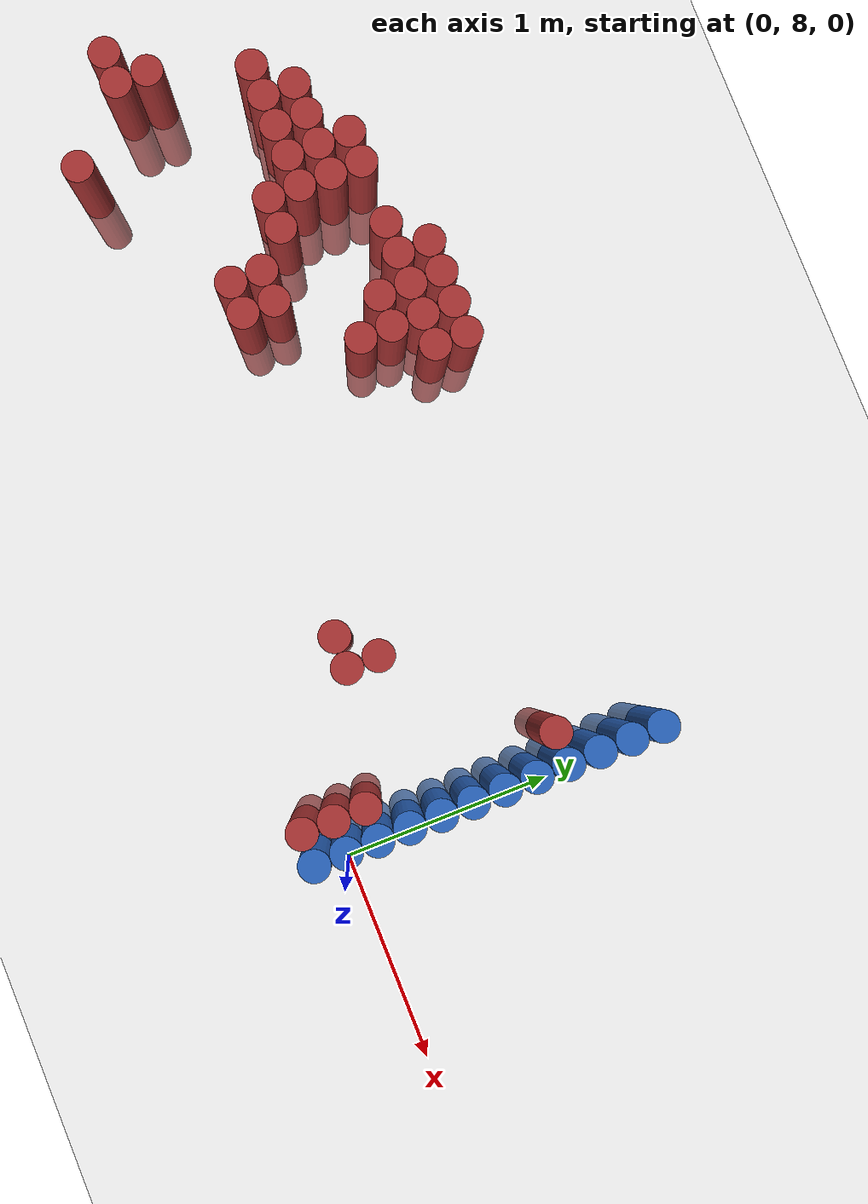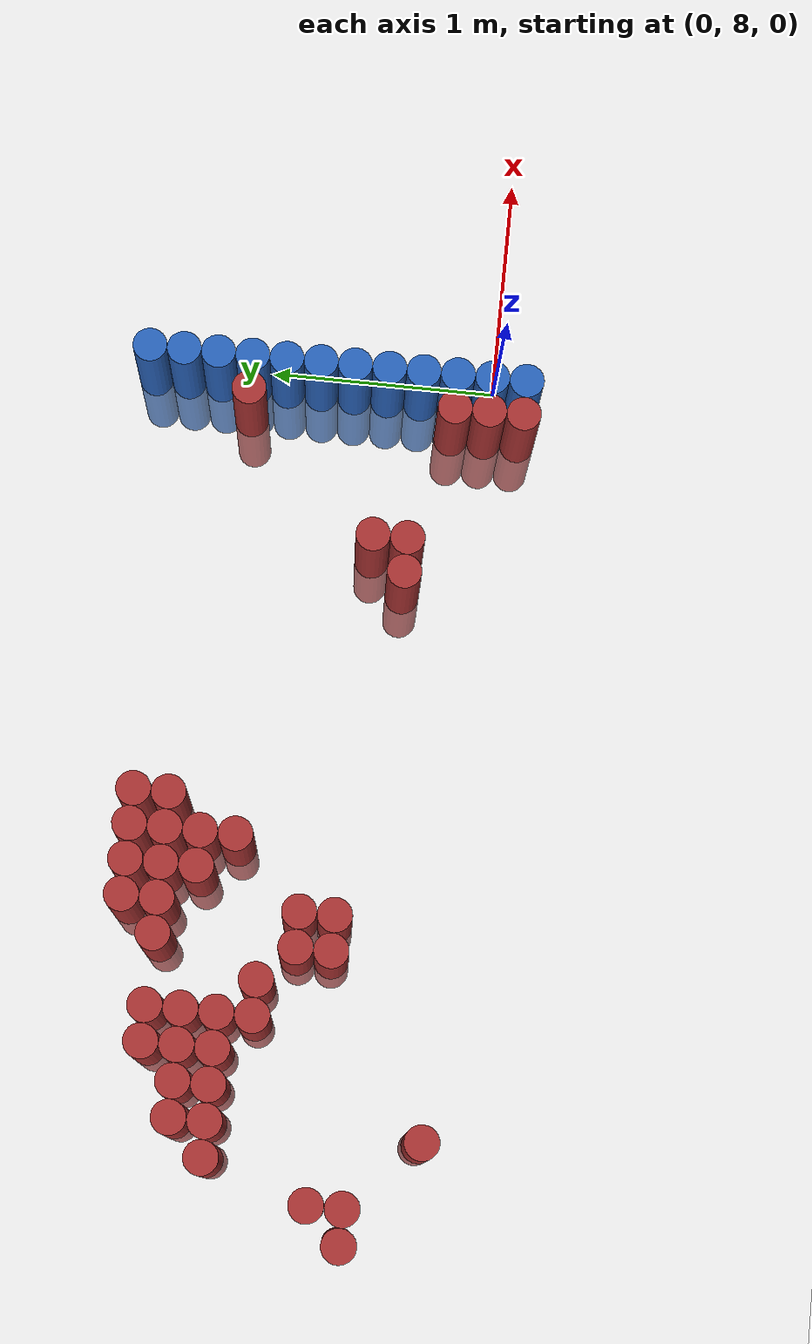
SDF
<sdf version="1.6">
 <world name="default">
  <model name="ground_plane">
   <static>1</static>
   <link name="link">
    <collision name="collision">
     <geometry><plane><normal>0 0 1</normal><size>100 100</size></plane></geometry>
     <surface><friction><ode><mu>100</mu><mu2>50</mu2></ode></friction></surface>
    </collision>
    <visual name="visual">
     <cast_shadows>0</cast_shadows>
     <geometry><plane><normal>0 0 1</normal><size>100 100</size></plane></geometry>
     <material>
      <script><uri>file://media/materials/scripts/gazebo.material</uri><name>Gazebo/Grey</name></script>
     </material>
    </visual>
   </link>
  </model>
  <model name="unit_cylinder_151">
   <static>1</static>
   <pose>-3.825000 8.325000 0.000000 0.000000 0.000000 0.000000</pose>
   <link name="link">
    <inertial>
     <mass>1</mass>
     <inertia><ixx>0.145833</ixx><ixy>0</ixy><ixz>0</ixz><iyy>0.145833</iyy><iyz>0</iyz><izz>0.125</izz></inertia>
    </inertial>
    <collision name="collision">
     <geometry><cylinder><radius>0.075000</radius><length>1</length></cylinder></geometry>
    </collision>
    <visual name="visual">
     <geometry><cylinder><radius>0.075000</radius><length>1</length></cylinder></geometry>
     <material>
      <ambient>0.648000 0.192000 0.192000 1</ambient>
      <diffuse>0.648000 0.192000 0.192000 1</diffuse>
     </material>
     <material>
      <script><name>Gazebo/Grey</name><uri>file://media/materials/scripts/gazebo.material</uri></script>
     </material>
    </visual>
   </link>
  </model>
  <model name="unit_cylinder_153">
   <static>1</static>
   <pose>-3.675000 8.325000 0.000000 0.000000 0.000000 0.000000</pose>
   <link name="link">
    <inertial>
     <mass>1</mass>
     <inertia><ixx>0.145833</ixx><ixy>0</ixy><ixz>0</ixz><iyy>0.145833</iyy><iyz>0</iyz><izz>0.125</izz></inertia>
    </inertial>
    <collision name="collision">
     <geometry><cylinder><radius>0.075000</radius><length>1</length></cylinder></geometry>
    </collision>
    <visual name="visual">
     <geometry><cylinder><radius>0.075000</radius><length>1</length></cylinder></geometry>
     <material>
      <ambient>0.648000 0.192000 0.192000 1</ambient>
      <diffuse>0.648000 0.192000 0.192000 1</diffuse>
     </material>
     <material>
      <script><name>Gazebo/Grey</name><uri>file://media/materials/scripts/gazebo.material</uri></script>
     </material>
    </visual>
   </link>
  </model>
  <model name="unit_cylinder_154">
   <static>1</static>
   <pose>-3.675000 8.475000 0.000000 0.000000 0.000000 0.000000</pose>
   <link name="link">
    <inertial>
     <mass>1</mass>
     <inertia><ixx>0.145833</ixx><ixy>0</ixy><ixz>0</ixz><iyy>0.145833</iyy><iyz>0</iyz><izz>0.125</izz></inertia>
    </inertial>
    <collision name="collision">
     <geometry><cylinder><radius>0.075000</radius><length>1</length></cylinder></geometry>
    </collision>
    <visual name="visual">
     <geometry><cylinder><radius>0.075000</radius><length>1</length></cylinder></geometry>
     <material>
      <ambient>0.648000 0.192000 0.192000 1</ambient>
      <diffuse>0.648000 0.192000 0.192000 1</diffuse>
     </material>
     <material>
      <script><name>Gazebo/Grey</name><uri>file://media/materials/scripts/gazebo.material</uri></script>
     </material>
    </visual>
   </link>
  </model>
  <model name="unit_cylinder_157">
   <static>1</static>
   <pose>-3.525000 8.925000 0.000000 0.000000 0.000000 0.000000</pose>
   <link name="link">
    <inertial>
     <mass>1</mass>
     <inertia><ixx>0.145833</ixx><ixy>0</ixy><ixz>0</ixz><iyy>0.145833</iyy><iyz>0</iyz><izz>0.125</izz></inertia>
    </inertial>
    <collision name="collision">
     <geometry><cylinder><radius>0.075000</radius><length>1</length></cylinder></geometry>
    </collision>
    <visual name="visual">
     <geometry><cylinder><radius>0.075000</radius><length>1</length></cylinder></geometry>
     <material>
      <ambient>0.648000 0.192000 0.192000 1</ambient>
      <diffuse>0.648000 0.192000 0.192000 1</diffuse>
     </material>
     <material>
      <script><name>Gazebo/Grey</name><uri>file://media/materials/scripts/gazebo.material</uri></script>
     </material>
    </visual>
   </link>
  </model>
  <model name="unit_cylinder_160">
   <static>1</static>
   <pose>-3.375000 8.025000 0.000000 0.000000 0.000000 0.000000</pose>
   <link name="link">
    <inertial>
     <mass>1</mass>
     <inertia><ixx>0.145833</ixx><ixy>0</ixy><ixz>0</ixz><iyy>0.145833</iyy><iyz>0</iyz><izz>0.125</izz></inertia>
    </inertial>
    <collision name="collision">
     <geometry><cylinder><radius>0.075000</radius><length>1</length></cylinder></geometry>
    </collision>
    <visual name="visual">
     <geometry><cylinder><radius>0.075000</radius><length>1</length></cylinder></geometry>
     <material>
      <ambient>0.648000 0.192000 0.192000 1</ambient>
      <diffuse>0.648000 0.192000 0.192000 1</diffuse>
     </material>
     <material>
      <script><name>Gazebo/Grey</name><uri>file://media/materials/scripts/gazebo.material</uri></script>
     </material>
    </visual>
   </link>
  </model>
  <model name="unit_cylinder_161">
   <static>1</static>
   <pose>-3.375000 8.925000 0.000000 0.000000 0.000000 0.000000</pose>
   <link name="link">
    <inertial>
     <mass>1</mass>
     <inertia><ixx>0.145833</ixx><ixy>0</ixy><ixz>0</ixz><iyy>0.145833</iyy><iyz>0</iyz><izz>0.125</izz></inertia>
    </inertial>
    <collision name="collision">
     <geometry><cylinder><radius>0.075000</radius><length>1</length></cylinder></geometry>
    </collision>
    <visual name="visual">
     <geometry><cylinder><radius>0.075000</radius><length>1</length></cylinder></geometry>
     <material>
      <ambient>0.648000 0.192000 0.192000 1</ambient>
      <diffuse>0.648000 0.192000 0.192000 1</diffuse>
     </material>
     <material>
      <script><name>Gazebo/Grey</name><uri>file://media/materials/scripts/gazebo.material</uri></script>
     </material>
    </visual>
   </link>
  </model>
  <model name="unit_cylinder_162">
   <static>1</static>
   <pose>-3.375000 9.075000 0.000000 0.000000 0.000000 0.000000</pose>
   <link name="link">
    <inertial>
     <mass>1</mass>
     <inertia><ixx>0.145833</ixx><ixy>0</ixy><ixz>0</ixz><iyy>0.145833</iyy><iyz>0</iyz><izz>0.125</izz></inertia>
    </inertial>
    <collision name="collision">
     <geometry><cylinder><radius>0.075000</radius><length>1</length></cylinder></geometry>
    </collision>
    <visual name="visual">
     <geometry><cylinder><radius>0.075000</radius><length>1</length></cylinder></geometry>
     <material>
      <ambient>0.648000 0.192000 0.192000 1</ambient>
      <diffuse>0.648000 0.192000 0.192000 1</diffuse>
     </material>
     <material>
      <script><name>Gazebo/Grey</name><uri>file://media/materials/scripts/gazebo.material</uri></script>
     </material>
    </visual>
   </link>
  </model>
  <model name="unit_cylinder_165">
   <static>1</static>
   <pose>-3.225000 8.925000 0.000000 0.000000 0.000000 0.000000</pose>
   <link name="link">
    <inertial>
     <mass>1</mass>
     <inertia><ixx>0.145833</ixx><ixy>0</ixy><ixz>0</ixz><iyy>0.145833</iyy><iyz>0</iyz><izz>0.125</izz></inertia>
    </inertial>
    <collision name="collision">
     <geometry><cylinder><radius>0.075000</radius><length>1</length></cylinder></geometry>
    </collision>
    <visual name="visual">
     <geometry><cylinder><radius>0.075000</radius><length>1</length></cylinder></geometry>
     <material>
      <ambient>0.648000 0.192000 0.192000 1</ambient>
      <diffuse>0.648000 0.192000 0.192000 1</diffuse>
     </material>
     <material>
      <script><name>Gazebo/Grey</name><uri>file://media/materials/scripts/gazebo.material</uri></script>
     </material>
    </visual>
   </link>
  </model>
  <model name="unit_cylinder_166">
   <static>1</static>
   <pose>-3.225000 9.075000 0.000000 0.000000 0.000000 0.000000</pose>
   <link name="link">
    <inertial>
     <mass>1</mass>
     <inertia><ixx>0.145833</ixx><ixy>0</ixy><ixz>0</ixz><iyy>0.145833</iyy><iyz>0</iyz><izz>0.125</izz></inertia>
    </inertial>
    <collision name="collision">
     <geometry><cylinder><radius>0.075000</radius><length>1</length></cylinder></geometry>
    </collision>
    <visual name="visual">
     <geometry><cylinder><radius>0.075000</radius><length>1</length></cylinder></geometry>
     <material>
      <ambient>0.648000 0.192000 0.192000 1</ambient>
      <diffuse>0.648000 0.192000 0.192000 1</diffuse>
     </material>
     <material>
      <script><name>Gazebo/Grey</name><uri>file://media/materials/scripts/gazebo.material</uri></script>
     </material>
    </visual>
   </link>
  </model>
  <model name="unit_cylinder_168">
   <static>1</static>
   <pose>-3.075000 8.925000 0.000000 0.000000 0.000000 0.000000</pose>
   <link name="link">
    <inertial>
     <mass>1</mass>
     <inertia><ixx>0.145833</ixx><ixy>0</ixy><ixz>0</ixz><iyy>0.145833</iyy><iyz>0</iyz><izz>0.125</izz></inertia>
    </inertial>
    <collision name="collision">
     <geometry><cylinder><radius>0.075000</radius><length>1</length></cylinder></geometry>
    </collision>
    <visual name="visual">
     <geometry><cylinder><radius>0.075000</radius><length>1</length></cylinder></geometry>
     <material>
      <ambient>0.648000 0.192000 0.192000 1</ambient>
      <diffuse>0.648000 0.192000 0.192000 1</diffuse>
     </material>
     <material>
      <script><name>Gazebo/Grey</name><uri>file://media/materials/scripts/gazebo.material</uri></script>
     </material>
    </visual>
   </link>
  </model>
  <model name="unit_cylinder_169">
   <static>1</static>
   <pose>-3.075000 9.075000 0.000000 0.000000 0.000000 0.000000</pose>
   <link name="link">
    <inertial>
     <mass>1</mass>
     <inertia><ixx>0.145833</ixx><ixy>0</ixy><ixz>0</ixz><iyy>0.145833</iyy><iyz>0</iyz><izz>0.125</izz></inertia>
    </inertial>
    <collision name="collision">
     <geometry><cylinder><radius>0.075000</radius><length>1</length></cylinder></geometry>
    </collision>
    <visual name="visual">
     <geometry><cylinder><radius>0.075000</radius><length>1</length></cylinder></geometry>
     <material>
      <ambient>0.648000 0.192000 0.192000 1</ambient>
      <diffuse>0.648000 0.192000 0.192000 1</diffuse>
     </material>
     <material>
      <script><name>Gazebo/Grey</name><uri>file://media/materials/scripts/gazebo.material</uri></script>
     </material>
    </visual>
   </link>
  </model>
  <model name="unit_cylinder_170">
   <static>1</static>
   <pose>-3.075000 9.225000 0.000000 0.000000 0.000000 0.000000</pose>
   <link name="link">
    <inertial>
     <mass>1</mass>
     <inertia><ixx>0.145833</ixx><ixy>0</ixy><ixz>0</ixz><iyy>0.145833</iyy><iyz>0</iyz><izz>0.125</izz></inertia>
    </inertial>
    <collision name="collision">
     <geometry><cylinder><radius>0.075000</radius><length>1</length></cylinder></geometry>
    </collision>
    <visual name="visual">
     <geometry><cylinder><radius>0.075000</radius><length>1</length></cylinder></geometry>
     <material>
      <ambient>0.648000 0.192000 0.192000 1</ambient>
      <diffuse>0.648000 0.192000 0.192000 1</diffuse>
     </material>
     <material>
      <script><name>Gazebo/Grey</name><uri>file://media/materials/scripts/gazebo.material</uri></script>
     </material>
    </visual>
   </link>
  </model>
  <model name="unit_cylinder_171">
   <static>1</static>
   <pose>-2.925000 8.775000 0.000000 0.000000 0.000000 0.000000</pose>
   <link name="link">
    <inertial>
     <mass>1</mass>
     <inertia><ixx>0.145833</ixx><ixy>0</ixy><ixz>0</ixz><iyy>0.145833</iyy><iyz>0</iyz><izz>0.125</izz></inertia>
    </inertial>
    <collision name="collision">
     <geometry><cylinder><radius>0.075000</radius><length>1</length></cylinder></geometry>
    </collision>
    <visual name="visual">
     <geometry><cylinder><radius>0.075000</radius><length>1</length></cylinder></geometry>
     <material>
      <ambient>0.648000 0.192000 0.192000 1</ambient>
      <diffuse>0.648000 0.192000 0.192000 1</diffuse>
     </material>
     <material>
      <script><name>Gazebo/Grey</name><uri>file://media/materials/scripts/gazebo.material</uri></script>
     </material>
    </visual>
   </link>
  </model>
  <model name="unit_cylinder_172">
   <static>1</static>
   <pose>-2.925000 8.925000 0.000000 0.000000 0.000000 0.000000</pose>
   <link name="link">
    <inertial>
     <mass>1</mass>
     <inertia><ixx>0.145833</ixx><ixy>0</ixy><ixz>0</ixz><iyy>0.145833</iyy><iyz>0</iyz><izz>0.125</izz></inertia>
    </inertial>
    <collision name="collision">
     <geometry><cylinder><radius>0.075000</radius><length>1</length></cylinder></geometry>
    </collision>
    <visual name="visual">
     <geometry><cylinder><radius>0.075000</radius><length>1</length></cylinder></geometry>
     <material>
      <ambient>0.648000 0.192000 0.192000 1</ambient>
      <diffuse>0.648000 0.192000 0.192000 1</diffuse>
     </material>
     <material>
      <script><name>Gazebo/Grey</name><uri>file://media/materials/scripts/gazebo.material</uri></script>
     </material>
    </visual>
   </link>
  </model>
  <model name="unit_cylinder_173">
   <static>1</static>
   <pose>-2.925000 9.075000 0.000000 0.000000 0.000000 0.000000</pose>
   <link name="link">
    <inertial>
     <mass>1</mass>
     <inertia><ixx>0.145833</ixx><ixy>0</ixy><ixz>0</ixz><iyy>0.145833</iyy><iyz>0</iyz><izz>0.125</izz></inertia>
    </inertial>
    <collision name="collision">
     <geometry><cylinder><radius>0.075000</radius><length>1</length></cylinder></geometry>
    </collision>
    <visual name="visual">
     <geometry><cylinder><radius>0.075000</radius><length>1</length></cylinder></geometry>
     <material>
      <ambient>0.648000 0.192000 0.192000 1</ambient>
      <diffuse>0.648000 0.192000 0.192000 1</diffuse>
     </material>
     <material>
      <script><name>Gazebo/Grey</name><uri>file://media/materials/scripts/gazebo.material</uri></script>
     </material>
    </visual>
   </link>
  </model>
  <model name="unit_cylinder_174">
   <static>1</static>
   <pose>-2.925000 9.225000 0.000000 0.000000 0.000000 0.000000</pose>
   <link name="link">
    <inertial>
     <mass>1</mass>
     <inertia><ixx>0.145833</ixx><ixy>0</ixy><ixz>0</ixz><iyy>0.145833</iyy><iyz>0</iyz><izz>0.125</izz></inertia>
    </inertial>
    <collision name="collision">
     <geometry><cylinder><radius>0.075000</radius><length>1</length></cylinder></geometry>
    </collision>
    <visual name="visual">
     <geometry><cylinder><radius>0.075000</radius><length>1</length></cylinder></geometry>
     <material>
      <ambient>0.648000 0.192000 0.192000 1</ambient>
      <diffuse>0.648000 0.192000 0.192000 1</diffuse>
     </material>
     <material>
      <script><name>Gazebo/Grey</name><uri>file://media/materials/scripts/gazebo.material</uri></script>
     </material>
    </visual>
   </link>
  </model>
  <model name="unit_cylinder_175">
   <static>1</static>
   <pose>-2.775000 8.775000 0.000000 0.000000 0.000000 0.000000</pose>
   <link name="link">
    <inertial>
     <mass>1</mass>
     <inertia><ixx>0.145833</ixx><ixy>0</ixy><ixz>0</ixz><iyy>0.145833</iyy><iyz>0</iyz><izz>0.125</izz></inertia>
    </inertial>
    <collision name="collision">
     <geometry><cylinder><radius>0.075000</radius><length>1</length></cylinder></geometry>
    </collision>
    <visual name="visual">
     <geometry><cylinder><radius>0.075000</radius><length>1</length></cylinder></geometry>
     <material>
      <ambient>0.648000 0.192000 0.192000 1</ambient>
      <diffuse>0.648000 0.192000 0.192000 1</diffuse>
     </material>
     <material>
      <script><name>Gazebo/Grey</name><uri>file://media/materials/scripts/gazebo.material</uri></script>
     </material>
    </visual>
   </link>
  </model>
  <model name="unit_cylinder_176">
   <static>1</static>
   <pose>-2.625000 8.475000 0.000000 0.000000 0.000000 0.000000</pose>
   <link name="link">
    <inertial>
     <mass>1</mass>
     <inertia><ixx>0.145833</ixx><ixy>0</ixy><ixz>0</ixz><iyy>0.145833</iyy><iyz>0</iyz><izz>0.125</izz></inertia>
    </inertial>
    <collision name="collision">
     <geometry><cylinder><radius>0.075000</radius><length>1</length></cylinder></geometry>
    </collision>
    <visual name="visual">
     <geometry><cylinder><radius>0.075000</radius><length>1</length></cylinder></geometry>
     <material>
      <ambient>0.648000 0.192000 0.192000 1</ambient>
      <diffuse>0.648000 0.192000 0.192000 1</diffuse>
     </material>
     <material>
      <script><name>Gazebo/Grey</name><uri>file://media/materials/scripts/gazebo.material</uri></script>
     </material>
    </visual>
   </link>
  </model>
  <model name="unit_cylinder_177">
   <static>1</static>
   <pose>-2.625000 8.625000 0.000000 0.000000 0.000000 0.000000</pose>
   <link name="link">
    <inertial>
     <mass>1</mass>
     <inertia><ixx>0.145833</ixx><ixy>0</ixy><ixz>0</ixz><iyy>0.145833</iyy><iyz>0</iyz><izz>0.125</izz></inertia>
    </inertial>
    <collision name="collision">
     <geometry><cylinder><radius>0.075000</radius><length>1</length></cylinder></geometry>
    </collision>
    <visual name="visual">
     <geometry><cylinder><radius>0.075000</radius><length>1</length></cylinder></geometry>
     <material>
      <ambient>0.648000 0.192000 0.192000 1</ambient>
      <diffuse>0.648000 0.192000 0.192000 1</diffuse>
     </material>
     <material>
      <script><name>Gazebo/Grey</name><uri>file://media/materials/scripts/gazebo.material</uri></script>
     </material>
    </visual>
   </link>
  </model>
  <model name="unit_cylinder_178">
   <static>1</static>
   <pose>-2.625000 9.225000 0.000000 0.000000 0.000000 0.000000</pose>
   <link name="link">
    <inertial>
     <mass>1</mass>
     <inertia><ixx>0.145833</ixx><ixy>0</ixy><ixz>0</ixz><iyy>0.145833</iyy><iyz>0</iyz><izz>0.125</izz></inertia>
    </inertial>
    <collision name="collision">
     <geometry><cylinder><radius>0.075000</radius><length>1</length></cylinder></geometry>
    </collision>
    <visual name="visual">
     <geometry><cylinder><radius>0.075000</radius><length>1</length></cylinder></geometry>
     <material>
      <ambient>0.648000 0.192000 0.192000 1</ambient>
      <diffuse>0.648000 0.192000 0.192000 1</diffuse>
     </material>
     <material>
      <script><name>Gazebo/Grey</name><uri>file://media/materials/scripts/gazebo.material</uri></script>
     </material>
    </visual>
   </link>
  </model>
  <model name="unit_cylinder_179">
   <static>1</static>
   <pose>-2.475000 8.475000 0.000000 0.000000 0.000000 0.000000</pose>
   <link name="link">
    <inertial>
     <mass>1</mass>
     <inertia><ixx>0.145833</ixx><ixy>0</ixy><ixz>0</ixz><iyy>0.145833</iyy><iyz>0</iyz><izz>0.125</izz></inertia>
    </inertial>
    <collision name="collision">
     <geometry><cylinder><radius>0.075000</radius><length>1</length></cylinder></geometry>
    </collision>
    <visual name="visual">
     <geometry><cylinder><radius>0.075000</radius><length>1</length></cylinder></geometry>
     <material>
      <ambient>0.648000 0.192000 0.192000 1</ambient>
      <diffuse>0.648000 0.192000 0.192000 1</diffuse>
     </material>
     <material>
      <script><name>Gazebo/Grey</name><uri>file://media/materials/scripts/gazebo.material</uri></script>
     </material>
    </visual>
   </link>
  </model>
  <model name="unit_cylinder_180">
   <static>1</static>
   <pose>-2.475000 8.625000 0.000000 0.000000 0.000000 0.000000</pose>
   <link name="link">
    <inertial>
     <mass>1</mass>
     <inertia><ixx>0.145833</ixx><ixy>0</ixy><ixz>0</ixz><iyy>0.145833</iyy><iyz>0</iyz><izz>0.125</izz></inertia>
    </inertial>
    <collision name="collision">
     <geometry><cylinder><radius>0.075000</radius><length>1</length></cylinder></geometry>
    </collision>
    <visual name="visual">
     <geometry><cylinder><radius>0.075000</radius><length>1</length></cylinder></geometry>
     <material>
      <ambient>0.648000 0.192000 0.192000 1</ambient>
      <diffuse>0.648000 0.192000 0.192000 1</diffuse>
     </material>
     <material>
      <script><name>Gazebo/Grey</name><uri>file://media/materials/scripts/gazebo.material</uri></script>
     </material>
    </visual>
   </link>
  </model>
  <model name="unit_cylinder_181">
   <static>1</static>
   <pose>-2.475000 9.225000 0.000000 0.000000 0.000000 0.000000</pose>
   <link name="link">
    <inertial>
     <mass>1</mass>
     <inertia><ixx>0.145833</ixx><ixy>0</ixy><ixz>0</ixz><iyy>0.145833</iyy><iyz>0</iyz><izz>0.125</izz></inertia>
    </inertial>
    <collision name="collision">
     <geometry><cylinder><radius>0.075000</radius><length>1</length></cylinder></geometry>
    </collision>
    <visual name="visual">
     <geometry><cylinder><radius>0.075000</radius><length>1</length></cylinder></geometry>
     <material>
      <ambient>0.648000 0.192000 0.192000 1</ambient>
      <diffuse>0.648000 0.192000 0.192000 1</diffuse>
     </material>
     <material>
      <script><name>Gazebo/Grey</name><uri>file://media/materials/scripts/gazebo.material</uri></script>
     </material>
    </visual>
   </link>
  </model>
  <model name="unit_cylinder_182">
   <static>1</static>
   <pose>-2.475000 9.375000 0.000000 0.000000 0.000000 0.000000</pose>
   <link name="link">
    <inertial>
     <mass>1</mass>
     <inertia><ixx>0.145833</ixx><ixy>0</ixy><ixz>0</ixz><iyy>0.145833</iyy><iyz>0</iyz><izz>0.125</izz></inertia>
    </inertial>
    <collision name="collision">
     <geometry><cylinder><radius>0.075000</radius><length>1</length></cylinder></geometry>
    </collision>
    <visual name="visual">
     <geometry><cylinder><radius>0.075000</radius><length>1</length></cylinder></geometry>
     <material>
      <ambient>0.648000 0.192000 0.192000 1</ambient>
      <diffuse>0.648000 0.192000 0.192000 1</diffuse>
     </material>
     <material>
      <script><name>Gazebo/Grey</name><uri>file://media/materials/scripts/gazebo.material</uri></script>
     </material>
    </visual>
   </link>
  </model>
  <model name="unit_cylinder_183">
   <static>1</static>
   <pose>-2.325000 9.075000 0.000000 0.000000 0.000000 0.000000</pose>
   <link name="link">
    <inertial>
     <mass>1</mass>
     <inertia><ixx>0.145833</ixx><ixy>0</ixy><ixz>0</ixz><iyy>0.145833</iyy><iyz>0</iyz><izz>0.125</izz></inertia>
    </inertial>
    <collision name="collision">
     <geometry><cylinder><radius>0.075000</radius><length>1</length></cylinder></geometry>
    </collision>
    <visual name="visual">
     <geometry><cylinder><radius>0.075000</radius><length>1</length></cylinder></geometry>
     <material>
      <ambient>0.648000 0.192000 0.192000 1</ambient>
      <diffuse>0.648000 0.192000 0.192000 1</diffuse>
     </material>
     <material>
      <script><name>Gazebo/Grey</name><uri>file://media/materials/scripts/gazebo.material</uri></script>
     </material>
    </visual>
   </link>
  </model>
  <model name="unit_cylinder_184">
   <static>1</static>
   <pose>-2.325000 9.225000 0.000000 0.000000 0.000000 0.000000</pose>
   <link name="link">
    <inertial>
     <mass>1</mass>
     <inertia><ixx>0.145833</ixx><ixy>0</ixy><ixz>0</ixz><iyy>0.145833</iyy><iyz>0</iyz><izz>0.125</izz></inertia>
    </inertial>
    <collision name="collision">
     <geometry><cylinder><radius>0.075000</radius><length>1</length></cylinder></geometry>
    </collision>
    <visual name="visual">
     <geometry><cylinder><radius>0.075000</radius><length>1</length></cylinder></geometry>
     <material>
      <ambient>0.648000 0.192000 0.192000 1</ambient>
      <diffuse>0.648000 0.192000 0.192000 1</diffuse>
     </material>
     <material>
      <script><name>Gazebo/Grey</name><uri>file://media/materials/scripts/gazebo.material</uri></script>
     </material>
    </visual>
   </link>
  </model>
  <model name="unit_cylinder_185">
   <static>1</static>
   <pose>-2.325000 9.375000 0.000000 0.000000 0.000000 0.000000</pose>
   <link name="link">
    <inertial>
     <mass>1</mass>
     <inertia><ixx>0.145833</ixx><ixy>0</ixy><ixz>0</ixz><iyy>0.145833</iyy><iyz>0</iyz><izz>0.125</izz></inertia>
    </inertial>
    <collision name="collision">
     <geometry><cylinder><radius>0.075000</radius><length>1</length></cylinder></geometry>
    </collision>
    <visual name="visual">
     <geometry><cylinder><radius>0.075000</radius><length>1</length></cylinder></geometry>
     <material>
      <ambient>0.648000 0.192000 0.192000 1</ambient>
      <diffuse>0.648000 0.192000 0.192000 1</diffuse>
     </material>
     <material>
      <script><name>Gazebo/Grey</name><uri>file://media/materials/scripts/gazebo.material</uri></script>
     </material>
    </visual>
   </link>
  </model>
  <model name="unit_cylinder_187">
   <static>1</static>
   <pose>-2.175000 8.925000 0.000000 0.000000 0.000000 0.000000</pose>
   <link name="link">
    <inertial>
     <mass>1</mass>
     <inertia><ixx>0.145833</ixx><ixy>0</ixy><ixz>0</ixz><iyy>0.145833</iyy><iyz>0</iyz><izz>0.125</izz></inertia>
    </inertial>
    <collision name="collision">
     <geometry><cylinder><radius>0.075000</radius><length>1</length></cylinder></geometry>
    </collision>
    <visual name="visual">
     <geometry><cylinder><radius>0.075000</radius><length>1</length></cylinder></geometry>
     <material>
      <ambient>0.648000 0.192000 0.192000 1</ambient>
      <diffuse>0.648000 0.192000 0.192000 1</diffuse>
     </material>
     <material>
      <script><name>Gazebo/Grey</name><uri>file://media/materials/scripts/gazebo.material</uri></script>
     </material>
    </visual>
   </link>
  </model>
  <model name="unit_cylinder_188">
   <static>1</static>
   <pose>-2.175000 9.075000 0.000000 0.000000 0.000000 0.000000</pose>
   <link name="link">
    <inertial>
     <mass>1</mass>
     <inertia><ixx>0.145833</ixx><ixy>0</ixy><ixz>0</ixz><iyy>0.145833</iyy><iyz>0</iyz><izz>0.125</izz></inertia>
    </inertial>
    <collision name="collision">
     <geometry><cylinder><radius>0.075000</radius><length>1</length></cylinder></geometry>
    </collision>
    <visual name="visual">
     <geometry><cylinder><radius>0.075000</radius><length>1</length></cylinder></geometry>
     <material>
      <ambient>0.648000 0.192000 0.192000 1</ambient>
      <diffuse>0.648000 0.192000 0.192000 1</diffuse>
     </material>
     <material>
      <script><name>Gazebo/Grey</name><uri>file://media/materials/scripts/gazebo.material</uri></script>
     </material>
    </visual>
   </link>
  </model>
  <model name="unit_cylinder_189">
   <static>1</static>
   <pose>-2.175000 9.225000 0.000000 0.000000 0.000000 0.000000</pose>
   <link name="link">
    <inertial>
     <mass>1</mass>
     <inertia><ixx>0.145833</ixx><ixy>0</ixy><ixz>0</ixz><iyy>0.145833</iyy><iyz>0</iyz><izz>0.125</izz></inertia>
    </inertial>
    <collision name="collision">
     <geometry><cylinder><radius>0.075000</radius><length>1</length></cylinder></geometry>
    </collision>
    <visual name="visual">
     <geometry><cylinder><radius>0.075000</radius><length>1</length></cylinder></geometry>
     <material>
      <ambient>0.648000 0.192000 0.192000 1</ambient>
      <diffuse>0.648000 0.192000 0.192000 1</diffuse>
     </material>
     <material>
      <script><name>Gazebo/Grey</name><uri>file://media/materials/scripts/gazebo.material</uri></script>
     </material>
    </visual>
   </link>
  </model>
  <model name="unit_cylinder_190">
   <static>1</static>
   <pose>-2.175000 9.375000 0.000000 0.000000 0.000000 0.000000</pose>
   <link name="link">
    <inertial>
     <mass>1</mass>
     <inertia><ixx>0.145833</ixx><ixy>0</ixy><ixz>0</ixz><iyy>0.145833</iyy><iyz>0</iyz><izz>0.125</izz></inertia>
    </inertial>
    <collision name="collision">
     <geometry><cylinder><radius>0.075000</radius><length>1</length></cylinder></geometry>
    </collision>
    <visual name="visual">
     <geometry><cylinder><radius>0.075000</radius><length>1</length></cylinder></geometry>
     <material>
      <ambient>0.648000 0.192000 0.192000 1</ambient>
      <diffuse>0.648000 0.192000 0.192000 1</diffuse>
     </material>
     <material>
      <script><name>Gazebo/Grey</name><uri>file://media/materials/scripts/gazebo.material</uri></script>
     </material>
    </visual>
   </link>
  </model>
  <model name="unit_cylinder_194">
   <static>1</static>
   <pose>-2.025000 9.225000 0.000000 0.000000 0.000000 0.000000</pose>
   <link name="link">
    <inertial>
     <mass>1</mass>
     <inertia><ixx>0.145833</ixx><ixy>0</ixy><ixz>0</ixz><iyy>0.145833</iyy><iyz>0</iyz><izz>0.125</izz></inertia>
    </inertial>
    <collision name="collision">
     <geometry><cylinder><radius>0.075000</radius><length>1</length></cylinder></geometry>
    </collision>
    <visual name="visual">
     <geometry><cylinder><radius>0.075000</radius><length>1</length></cylinder></geometry>
     <material>
      <ambient>0.648000 0.192000 0.192000 1</ambient>
      <diffuse>0.648000 0.192000 0.192000 1</diffuse>
     </material>
     <material>
      <script><name>Gazebo/Grey</name><uri>file://media/materials/scripts/gazebo.material</uri></script>
     </material>
    </visual>
   </link>
  </model>
  <model name="unit_cylinder_195">
   <static>1</static>
   <pose>-2.025000 9.375000 0.000000 0.000000 0.000000 0.000000</pose>
   <link name="link">
    <inertial>
     <mass>1</mass>
     <inertia><ixx>0.145833</ixx><ixy>0</ixy><ixz>0</ixz><iyy>0.145833</iyy><iyz>0</iyz><izz>0.125</izz></inertia>
    </inertial>
    <collision name="collision">
     <geometry><cylinder><radius>0.075000</radius><length>1</length></cylinder></geometry>
    </collision>
    <visual name="visual">
     <geometry><cylinder><radius>0.075000</radius><length>1</length></cylinder></geometry>
     <material>
      <ambient>0.648000 0.192000 0.192000 1</ambient>
      <diffuse>0.648000 0.192000 0.192000 1</diffuse>
     </material>
     <material>
      <script><name>Gazebo/Grey</name><uri>file://media/materials/scripts/gazebo.material</uri></script>
     </material>
    </visual>
   </link>
  </model>
  <model name="unit_cylinder_211">
   <static>1</static>
   <pose>-0.975000 8.325000 0.000000 0.000000 0.000000 0.000000</pose>
   <link name="link">
    <inertial>
     <mass>1</mass>
     <inertia><ixx>0.145833</ixx><ixy>0</ixy><ixz>0</ixz><iyy>0.145833</iyy><iyz>0</iyz><izz>0.125</izz></inertia>
    </inertial>
    <collision name="collision">
     <geometry><cylinder><radius>0.075000</radius><length>1</length></cylinder></geometry>
    </collision>
    <visual name="visual">
     <geometry><cylinder><radius>0.075000</radius><length>1</length></cylinder></geometry>
     <material>
      <ambient>0.648000 0.192000 0.192000 1</ambient>
      <diffuse>0.648000 0.192000 0.192000 1</diffuse>
     </material>
     <material>
      <script><name>Gazebo/Grey</name><uri>file://media/materials/scripts/gazebo.material</uri></script>
     </material>
    </visual>
   </link>
  </model>
  <model name="unit_cylinder_214">
   <static>1</static>
   <pose>-0.825000 8.325000 0.000000 0.000000 0.000000 0.000000</pose>
   <link name="link">
    <inertial>
     <mass>1</mass>
     <inertia><ixx>0.145833</ixx><ixy>0</ixy><ixz>0</ixz><iyy>0.145833</iyy><iyz>0</iyz><izz>0.125</izz></inertia>
    </inertial>
    <collision name="collision">
     <geometry><cylinder><radius>0.075000</radius><length>1</length></cylinder></geometry>
    </collision>
    <visual name="visual">
     <geometry><cylinder><radius>0.075000</radius><length>1</length></cylinder></geometry>
     <material>
      <ambient>0.648000 0.192000 0.192000 1</ambient>
      <diffuse>0.648000 0.192000 0.192000 1</diffuse>
     </material>
     <material>
      <script><name>Gazebo/Grey</name><uri>file://media/materials/scripts/gazebo.material</uri></script>
     </material>
    </visual>
   </link>
  </model>
  <model name="unit_cylinder_215">
   <static>1</static>
   <pose>-0.825000 8.475000 0.000000 0.000000 0.000000 0.000000</pose>
   <link name="link">
    <inertial>
     <mass>1</mass>
     <inertia><ixx>0.145833</ixx><ixy>0</ixy><ixz>0</ixz><iyy>0.145833</iyy><iyz>0</iyz><izz>0.125</izz></inertia>
    </inertial>
    <collision name="collision">
     <geometry><cylinder><radius>0.075000</radius><length>1</length></cylinder></geometry>
    </collision>
    <visual name="visual">
     <geometry><cylinder><radius>0.075000</radius><length>1</length></cylinder></geometry>
     <material>
      <ambient>0.648000 0.192000 0.192000 1</ambient>
      <diffuse>0.648000 0.192000 0.192000 1</diffuse>
     </material>
     <material>
      <script><name>Gazebo/Grey</name><uri>file://media/materials/scripts/gazebo.material</uri></script>
     </material>
    </visual>
   </link>
  </model>
  <model name="unit_cylinder_223">
   <static>1</static>
   <pose>-0.225000 7.875000 0.000000 0.000000 0.000000 0.000000</pose>
   <link name="link">
    <inertial>
     <mass>1</mass>
     <inertia><ixx>0.145833</ixx><ixy>0</ixy><ixz>0</ixz><iyy>0.145833</iyy><iyz>0</iyz><izz>0.125</izz></inertia>
    </inertial>
    <collision name="collision">
     <geometry><cylinder><radius>0.075000</radius><length>1</length></cylinder></geometry>
    </collision>
    <visual name="visual">
     <geometry><cylinder><radius>0.075000</radius><length>1</length></cylinder></geometry>
     <material>
      <ambient>0.648000 0.192000 0.192000 1</ambient>
      <diffuse>0.648000 0.192000 0.192000 1</diffuse>
     </material>
     <material>
      <script><name>Gazebo/Grey</name><uri>file://media/materials/scripts/gazebo.material</uri></script>
     </material>
    </visual>
   </link>
  </model>
  <model name="unit_cylinder_224">
   <static>1</static>
   <pose>-0.225000 8.025000 0.000000 0.000000 0.000000 0.000000</pose>
   <link name="link">
    <inertial>
     <mass>1</mass>
     <inertia><ixx>0.145833</ixx><ixy>0</ixy><ixz>0</ixz><iyy>0.145833</iyy><iyz>0</iyz><izz>0.125</izz></inertia>
    </inertial>
    <collision name="collision">
     <geometry><cylinder><radius>0.075000</radius><length>1</length></cylinder></geometry>
    </collision>
    <visual name="visual">
     <geometry><cylinder><radius>0.075000</radius><length>1</length></cylinder></geometry>
     <material>
      <ambient>0.648000 0.192000 0.192000 1</ambient>
      <diffuse>0.648000 0.192000 0.192000 1</diffuse>
     </material>
     <material>
      <script><name>Gazebo/Grey</name><uri>file://media/materials/scripts/gazebo.material</uri></script>
     </material>
    </visual>
   </link>
  </model>
  <model name="unit_cylinder_225">
   <static>1</static>
   <pose>-0.225000 8.175000 0.000000 0.000000 0.000000 0.000000</pose>
   <link name="link">
    <inertial>
     <mass>1</mass>
     <inertia><ixx>0.145833</ixx><ixy>0</ixy><ixz>0</ixz><iyy>0.145833</iyy><iyz>0</iyz><izz>0.125</izz></inertia>
    </inertial>
    <collision name="collision">
     <geometry><cylinder><radius>0.075000</radius><length>1</length></cylinder></geometry>
    </collision>
    <visual name="visual">
     <geometry><cylinder><radius>0.075000</radius><length>1</length></cylinder></geometry>
     <material>
      <ambient>0.648000 0.192000 0.192000 1</ambient>
      <diffuse>0.648000 0.192000 0.192000 1</diffuse>
     </material>
     <material>
      <script><name>Gazebo/Grey</name><uri>file://media/materials/scripts/gazebo.material</uri></script>
     </material>
    </visual>
   </link>
  </model>
  <model name="unit_cylinder_226">
   <static>1</static>
   <pose>-0.225000 9.075000 0.000000 0.000000 0.000000 0.000000</pose>
   <link name="link">
    <inertial>
     <mass>1</mass>
     <inertia><ixx>0.145833</ixx><ixy>0</ixy><ixz>0</ixz><iyy>0.145833</iyy><iyz>0</iyz><izz>0.125</izz></inertia>
    </inertial>
    <collision name="collision">
     <geometry><cylinder><radius>0.075000</radius><length>1</length></cylinder></geometry>
    </collision>
    <visual name="visual">
     <geometry><cylinder><radius>0.075000</radius><length>1</length></cylinder></geometry>
     <material>
      <ambient>0.648000 0.192000 0.192000 1</ambient>
      <diffuse>0.648000 0.192000 0.192000 1</diffuse>
     </material>
     <material>
      <script><name>Gazebo/Grey</name><uri>file://media/materials/scripts/gazebo.material</uri></script>
     </material>
    </visual>
   </link>
  </model>
  <model name="unit_cylinder_245">
   <static>1</static>
   <pose>-0.075000 7.875000 0.000000 0.000000 0.000000 0.000000</pose>
   <link name="link">
    <inertial>
     <mass>1</mass>
     <inertia><ixx>0.145833</ixx><ixy>0</ixy><ixz>0</ixz><iyy>0.145833</iyy><iyz>0</iyz><izz>0.125</izz></inertia>
    </inertial>
    <collision name="collision">
     <geometry><cylinder><radius>0.075000</radius><length>1</length></cylinder></geometry>
    </collision>
    <visual name="visual">
     <geometry><cylinder><radius>0.075000</radius><length>1</length></cylinder></geometry>
     <material>
      <ambient>0.152000 0.379000 0.720000 1</ambient>
      <diffuse>0.152000 0.379000 0.720000 1</diffuse>
     </material>
     <material>
      <script><name>Gazebo/Grey</name><uri>file://media/materials/scripts/gazebo.material</uri></script>
     </material>
    </visual>
   </link>
  </model>
  <model name="unit_cylinder_246">
   <static>1</static>
   <pose>-0.075000 8.025000 0.000000 0.000000 0.000000 0.000000</pose>
   <link name="link">
    <inertial>
     <mass>1</mass>
     <inertia><ixx>0.145833</ixx><ixy>0</ixy><ixz>0</ixz><iyy>0.145833</iyy><iyz>0</iyz><izz>0.125</izz></inertia>
    </inertial>
    <collision name="collision">
     <geometry><cylinder><radius>0.075000</radius><length>1</length></cylinder></geometry>
    </collision>
    <visual name="visual">
     <geometry><cylinder><radius>0.075000</radius><length>1</length></cylinder></geometry>
     <material>
      <ambient>0.152000 0.379000 0.720000 1</ambient>
      <diffuse>0.152000 0.379000 0.720000 1</diffuse>
     </material>
     <material>
      <script><name>Gazebo/Grey</name><uri>file://media/materials/scripts/gazebo.material</uri></script>
     </material>
    </visual>
   </link>
  </model>
  <model name="unit_cylinder_247">
   <static>1</static>
   <pose>-0.075000 8.175000 0.000000 0.000000 0.000000 0.000000</pose>
   <link name="link">
    <inertial>
     <mass>1</mass>
     <inertia><ixx>0.145833</ixx><ixy>0</ixy><ixz>0</ixz><iyy>0.145833</iyy><iyz>0</iyz><izz>0.125</izz></inertia>
    </inertial>
    <collision name="collision">
     <geometry><cylinder><radius>0.075000</radius><length>1</length></cylinder></geometry>
    </collision>
    <visual name="visual">
     <geometry><cylinder><radius>0.075000</radius><length>1</length></cylinder></geometry>
     <material>
      <ambient>0.152000 0.379000 0.720000 1</ambient>
      <diffuse>0.152000 0.379000 0.720000 1</diffuse>
     </material>
     <material>
      <script><name>Gazebo/Grey</name><uri>file://media/materials/scripts/gazebo.material</uri></script>
     </material>
    </visual>
   </link>
  </model>
  <model name="unit_cylinder_248">
   <static>1</static>
   <pose>-0.075000 8.325000 0.000000 0.000000 0.000000 0.000000</pose>
   <link name="link">
    <inertial>
     <mass>1</mass>
     <inertia><ixx>0.145833</ixx><ixy>0</ixy><ixz>0</ixz><iyy>0.145833</iyy><iyz>0</iyz><izz>0.125</izz></inertia>
    </inertial>
    <collision name="collision">
     <geometry><cylinder><radius>0.075000</radius><length>1</length></cylinder></geometry>
    </collision>
    <visual name="visual">
     <geometry><cylinder><radius>0.075000</radius><length>1</length></cylinder></geometry>
     <material>
      <ambient>0.152000 0.379000 0.720000 1</ambient>
      <diffuse>0.152000 0.379000 0.720000 1</diffuse>
     </material>
     <material>
      <script><name>Gazebo/Grey</name><uri>file://media/materials/scripts/gazebo.material</uri></script>
     </material>
    </visual>
   </link>
  </model>
  <model name="unit_cylinder_249">
   <static>1</static>
   <pose>-0.075000 8.475000 0.000000 0.000000 0.000000 0.000000</pose>
   <link name="link">
    <inertial>
     <mass>1</mass>
     <inertia><ixx>0.145833</ixx><ixy>0</ixy><ixz>0</ixz><iyy>0.145833</iyy><iyz>0</iyz><izz>0.125</izz></inertia>
    </inertial>
    <collision name="collision">
     <geometry><cylinder><radius>0.075000</radius><length>1</length></cylinder></geometry>
    </collision>
    <visual name="visual">
     <geometry><cylinder><radius>0.075000</radius><length>1</length></cylinder></geometry>
     <material>
      <ambient>0.152000 0.379000 0.720000 1</ambient>
      <diffuse>0.152000 0.379000 0.720000 1</diffuse>
     </material>
     <material>
      <script><name>Gazebo/Grey</name><uri>file://media/materials/scripts/gazebo.material</uri></script>
     </material>
    </visual>
   </link>
  </model>
  <model name="unit_cylinder_250">
   <static>1</static>
   <pose>-0.075000 8.625000 0.000000 0.000000 0.000000 0.000000</pose>
   <link name="link">
    <inertial>
     <mass>1</mass>
     <inertia><ixx>0.145833</ixx><ixy>0</ixy><ixz>0</ixz><iyy>0.145833</iyy><iyz>0</iyz><izz>0.125</izz></inertia>
    </inertial>
    <collision name="collision">
     <geometry><cylinder><radius>0.075000</radius><length>1</length></cylinder></geometry>
    </collision>
    <visual name="visual">
     <geometry><cylinder><radius>0.075000</radius><length>1</length></cylinder></geometry>
     <material>
      <ambient>0.152000 0.379000 0.720000 1</ambient>
      <diffuse>0.152000 0.379000 0.720000 1</diffuse>
     </material>
     <material>
      <script><name>Gazebo/Grey</name><uri>file://media/materials/scripts/gazebo.material</uri></script>
     </material>
    </visual>
   </link>
  </model>
  <model name="unit_cylinder_251">
   <static>1</static>
   <pose>-0.075000 8.775000 0.000000 0.000000 0.000000 0.000000</pose>
   <link name="link">
    <inertial>
     <mass>1</mass>
     <inertia><ixx>0.145833</ixx><ixy>0</ixy><ixz>0</ixz><iyy>0.145833</iyy><iyz>0</iyz><izz>0.125</izz></inertia>
    </inertial>
    <collision name="collision">
     <geometry><cylinder><radius>0.075000</radius><length>1</length></cylinder></geometry>
    </collision>
    <visual name="visual">
     <geometry><cylinder><radius>0.075000</radius><length>1</length></cylinder></geometry>
     <material>
      <ambient>0.152000 0.379000 0.720000 1</ambient>
      <diffuse>0.152000 0.379000 0.720000 1</diffuse>
     </material>
     <material>
      <script><name>Gazebo/Grey</name><uri>file://media/materials/scripts/gazebo.material</uri></script>
     </material>
    </visual>
   </link>
  </model>
  <model name="unit_cylinder_252">
   <static>1</static>
   <pose>-0.075000 8.925000 0.000000 0.000000 0.000000 0.000000</pose>
   <link name="link">
    <inertial>
     <mass>1</mass>
     <inertia><ixx>0.145833</ixx><ixy>0</ixy><ixz>0</ixz><iyy>0.145833</iyy><iyz>0</iyz><izz>0.125</izz></inertia>
    </inertial>
    <collision name="collision">
     <geometry><cylinder><radius>0.075000</radius><length>1</length></cylinder></geometry>
    </collision>
    <visual name="visual">
     <geometry><cylinder><radius>0.075000</radius><length>1</length></cylinder></geometry>
     <material>
      <ambient>0.152000 0.379000 0.720000 1</ambient>
      <diffuse>0.152000 0.379000 0.720000 1</diffuse>
     </material>
     <material>
      <script><name>Gazebo/Grey</name><uri>file://media/materials/scripts/gazebo.material</uri></script>
     </material>
    </visual>
   </link>
  </model>
  <model name="unit_cylinder_253">
   <static>1</static>
   <pose>-0.075000 9.075000 0.000000 0.000000 0.000000 0.000000</pose>
   <link name="link">
    <inertial>
     <mass>1</mass>
     <inertia><ixx>0.145833</ixx><ixy>0</ixy><ixz>0</ixz><iyy>0.145833</iyy><iyz>0</iyz><izz>0.125</izz></inertia>
    </inertial>
    <collision name="collision">
     <geometry><cylinder><radius>0.075000</radius><length>1</length></cylinder></geometry>
    </collision>
    <visual name="visual">
     <geometry><cylinder><radius>0.075000</radius><length>1</length></cylinder></geometry>
     <material>
      <ambient>0.152000 0.379000 0.720000 1</ambient>
      <diffuse>0.152000 0.379000 0.720000 1</diffuse>
     </material>
     <material>
      <script><name>Gazebo/Grey</name><uri>file://media/materials/scripts/gazebo.material</uri></script>
     </material>
    </visual>
   </link>
  </model>
  <model name="unit_cylinder_254">
   <static>1</static>
   <pose>-0.075000 9.225000 0.000000 0.000000 0.000000 0.000000</pose>
   <link name="link">
    <inertial>
     <mass>1</mass>
     <inertia><ixx>0.145833</ixx><ixy>0</ixy><ixz>0</ixz><iyy>0.145833</iyy><iyz>0</iyz><izz>0.125</izz></inertia>
    </inertial>
    <collision name="collision">
     <geometry><cylinder><radius>0.075000</radius><length>1</length></cylinder></geometry>
    </collision>
    <visual name="visual">
     <geometry><cylinder><radius>0.075000</radius><length>1</length></cylinder></geometry>
     <material>
      <ambient>0.152000 0.379000 0.720000 1</ambient>
      <diffuse>0.152000 0.379000 0.720000 1</diffuse>
     </material>
     <material>
      <script><name>Gazebo/Grey</name><uri>file://media/materials/scripts/gazebo.material</uri></script>
     </material>
    </visual>
   </link>
  </model>
  <model name="unit_cylinder_255">
   <static>1</static>
   <pose>-0.075000 9.375000 0.000000 0.000000 0.000000 0.000000</pose>
   <link name="link">
    <inertial>
     <mass>1</mass>
     <inertia><ixx>0.145833</ixx><ixy>0</ixy><ixz>0</ixz><iyy>0.145833</iyy><iyz>0</iyz><izz>0.125</izz></inertia>
    </inertial>
    <collision name="collision">
     <geometry><cylinder><radius>0.075000</radius><length>1</length></cylinder></geometry>
    </collision>
    <visual name="visual">
     <geometry><cylinder><radius>0.075000</radius><length>1</length></cylinder></geometry>
     <material>
      <ambient>0.152000 0.379000 0.720000 1</ambient>
      <diffuse>0.152000 0.379000 0.720000 1</diffuse>
     </material>
     <material>
      <script><name>Gazebo/Grey</name><uri>file://media/materials/scripts/gazebo.material</uri></script>
     </material>
    </visual>
   </link>
  </model>
  <model name="unit_cylinder_256">
   <static>1</static>
   <pose>-0.075000 9.525000 0.000000 0.000000 0.000000 0.000000</pose>
   <link name="link">
    <inertial>
     <mass>1</mass>
     <inertia><ixx>0.145833</ixx><ixy>0</ixy><ixz>0</ixz><iyy>0.145833</iyy><iyz>0</iyz><izz>0.125</izz></inertia>
    </inertial>
    <collision name="collision">
     <geometry><cylinder><radius>0.075000</radius><length>1</length></cylinder></geometry>
    </collision>
    <visual name="visual">
     <geometry><cylinder><radius>0.075000</radius><length>1</length></cylinder></geometry>
     <material>
      <ambient>0.152000 0.379000 0.720000 1</ambient>
      <diffuse>0.152000 0.379000 0.720000 1</diffuse>
     </material>
     <material>
      <script><name>Gazebo/Grey</name><uri>file://media/materials/scripts/gazebo.material</uri></script>
     </material>
    </visual>
   </link>
  </model>
 </world>
</sdf>
